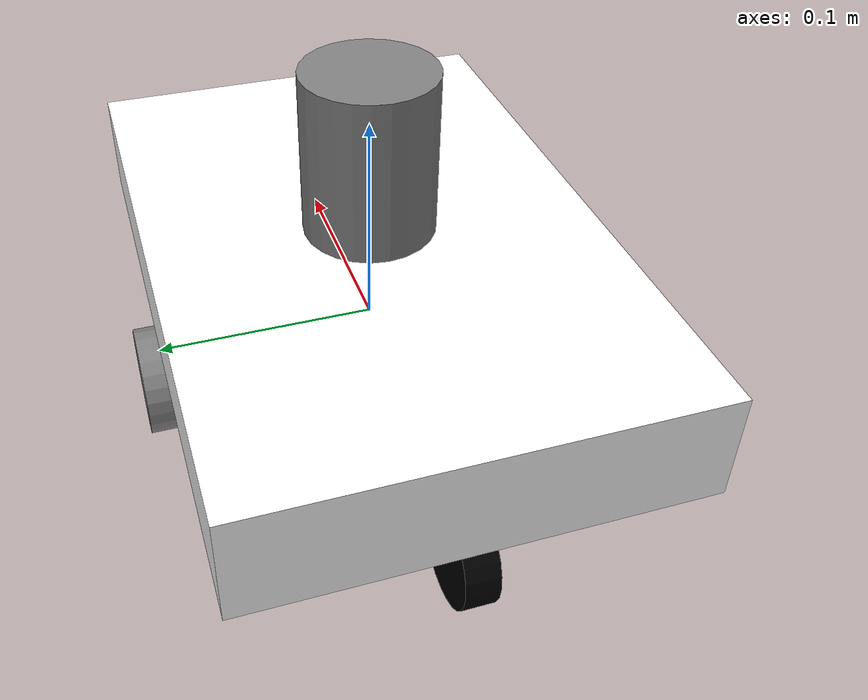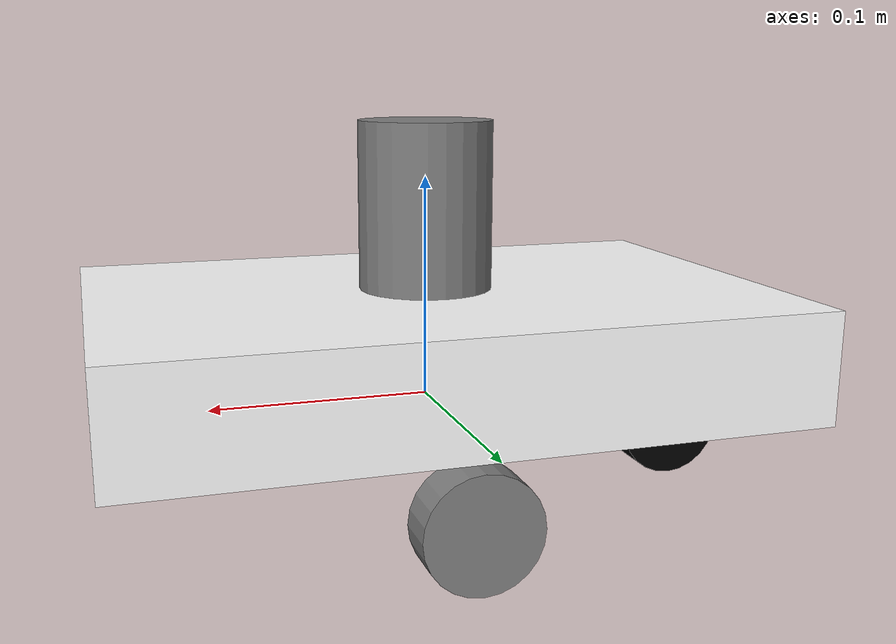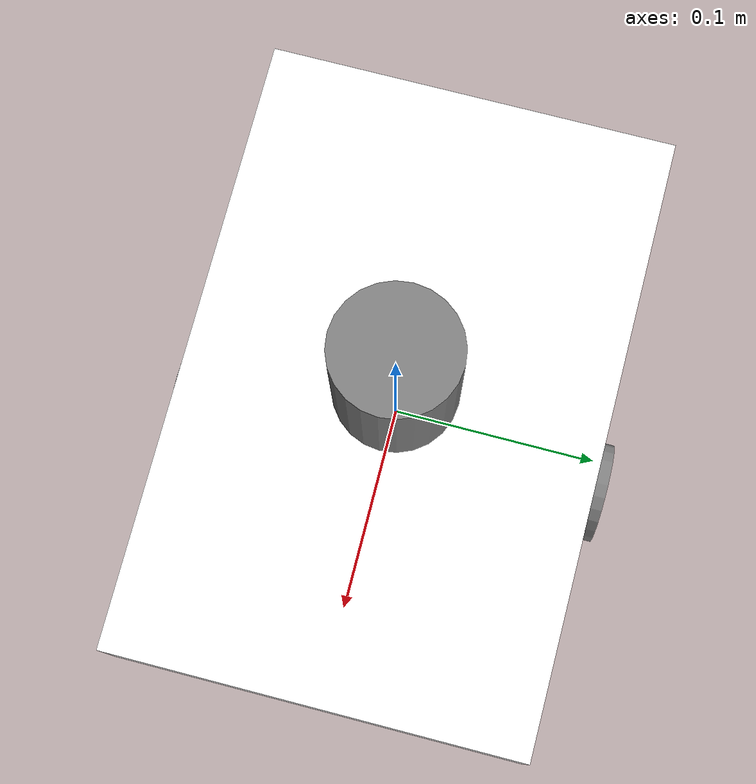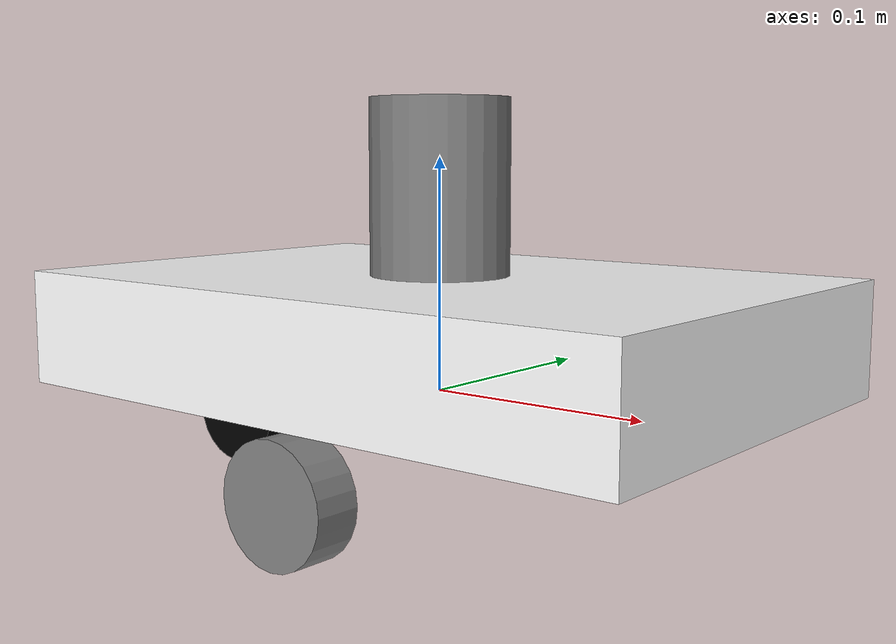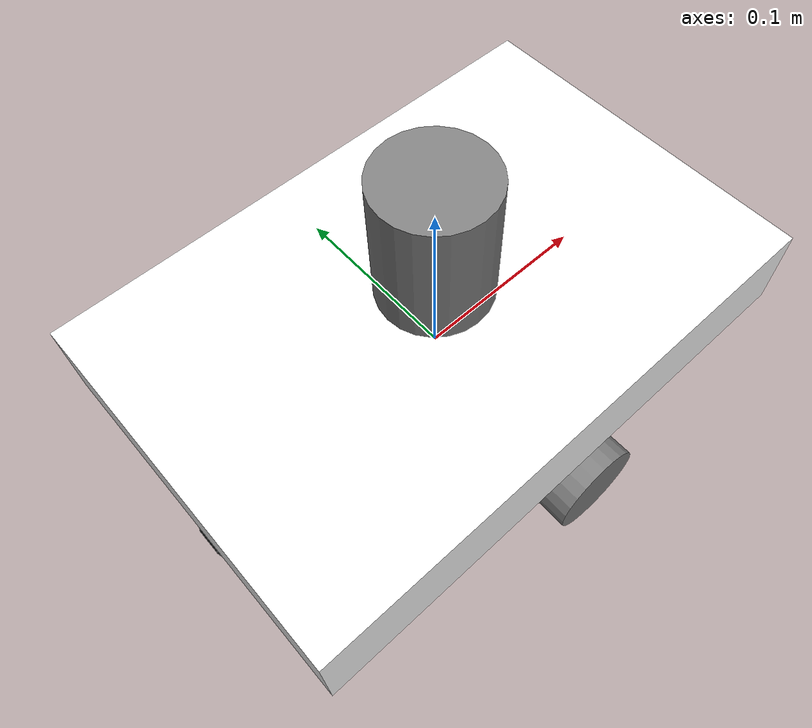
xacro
<?xml version="1.0"?>
<robot name="lib_robot" xmlns:xacro="http://ros.org/wiki/xacro">

  <xacro:include filename="$(find project_wooyangwoo)/urdf/wheel.urdf.xacro" />
  <xacro:include filename="$(find project_wooyangwoo)/urdf/caster_wheel.urdf.xacro" />

<!-- 색깔 정의 -->
  <material name="Black">
    <color rgba="0.0 0.0 0.0 1.0"/>
  </material>
  <material name="Red">
    <color rgba="0.8 0.0 0.0 1.0"/>
  </material>
  <material name="White">
    <color rgba="1.0 1.0 1.0 1.0"/>
  </material>
  <material name="Grey">
    <color rgba="0.5 0.5 0.5 1.0"/>
  </material>
  <material name="Blue">
    <color rgba="0.0 0.0 0.8 1.0"/>
  </material>

  <!-- PROPERTY LIST -->
  <!--기본 프로퍼티-->
  <xacro:property name="M_PI" value="3.1415926535897931" />
  <xacro:property name="M_PI_2" value="1.570796327" />
  <xacro:property name="DEG_TO_RAD" value="0.017453293" />

 <!-- 베이스링크 프로퍼티 -->
  <xacro:property name="base_length" value="0.30" />  <!-- 30cm -->
  <xacro:property name="base_width" value="0.20" />   <!-- 20cm -->
  <xacro:property name="base_height" value="0.05" />  <!-- 5cm -->
  <xacro:property name="base_mass" value="5.0" />     <!-- kg -->

  <!-- 바퀴 프로퍼티 -->
  <xacro:property name="wheel_mass" value="2.5" /> <!-- in kg-->
  <xacro:property name="base_x_origin_to_wheel_origin" value="0.25" />
  <xacro:property name="base_y_origin_to_wheel_origin" value="0.3" />
  <xacro:property name="base_z_origin_to_wheel_origin" value="0.0" />

  <!-- Hokuyo Laser scanner -->
  <xacro:property name="hokuyo_size" value="0.05" />

  <!-- Macro for calculating inertia of cylinder -->
  <xacro:macro name="cylinder_inertia" params="m r h">
    <inertia  ixx="${m*(3*r*r+h*h)/12}" ixy = "0" ixz = "0"
              iyy="${m*(3*r*r+h*h)/12}" iyz = "0"
              izz="${m*r*r/2}" />
  </xacro:macro>

  <!-- BASE-FOOTPRINT -->
  <link name="base_footprint">
    <inertial>
      <mass value="0.0001" />
      <origin xyz="0 0 0" />
      <inertia ixx="0.0001" ixy="0.0" ixz="0.0"
          iyy="0.0001" iyz="0.0"
          izz="0.0001" />
    </inertial>
    <visual>
        <origin xyz="0 0 0" rpy="0 0 0" />
        <geometry>
            <box size="0.001 0.001 0.001" />
        </geometry>
    </visual>
  </link>

  <gazebo reference="base_footprint">
    <turnGravityOff>false</turnGravityOff>
  </gazebo>

  <joint name="base_footprint_joint" type="fixed">
    <origin xyz="0 0 ${wheel_radius - base_z_origin_to_wheel_origin}" rpy="0 0 0" />
    <parent link="base_footprint"/>
    <child link="base_link" />
  </joint>

  <!--베이스 링크-->
  <link name="base_link">
    <inertial>
      <mass value="${base_mass}" />
      <origin xyz="0 0 0" />
      <inertia ixx="${base_mass*(base_width*base_width + base_height*base_height) / 12}"
              ixy="0.0"
              ixz="0.0"
              iyy="${base_mass*(base_length*base_length + base_height*base_height) / 12}"
              iyz="0.0"
              izz="${base_mass*(base_length*base_length + base_width*base_width) / 12}" />
    </inertial>
    <visual>
      <origin xyz="0 0 0" rpy="0 0 0" />
      <geometry>
        <box size="${base_length} ${base_width} ${base_height}" />
      </geometry>
      <material name="White" />
    </visual>
    <collision>
      <origin xyz="0 0 0" rpy="0 0 0" />
      <geometry>
        <box size="${base_length} ${base_width} ${base_height}" />
      </geometry>
    </collision>
  </link>

  <gazebo reference="base_link">
    <material>Gazebo/White</material>
    <turnGravityOff>false</turnGravityOff>
  </gazebo>

  <!-- Lidar 센서 링크 정의 -->
  <link name="lidar_link">
    <visual>
      <origin xyz="0 0 0" rpy="0 0 0"/>
      <geometry>
        <cylinder radius="0.03" length="0.1"/> <!-- 반지름 3cm, 높이 10cm -->
      </geometry>
      <material name="Grey"/>
    </visual>
    <collision>
      <origin xyz="0 0 0" rpy="0 0 0"/>
      <geometry>
        <cylinder radius="0.03" length="0.1"/> <!-- 반지름 3cm, 높이 10cm -->
      </geometry>
    </collision>
    <inertial>
      <mass value="0.5"/> <!-- 질량 설정 (kg) -->
      <origin xyz="0 0 0"/>
      <inertia ixx="0.0005" ixy="0" ixz="0"
               iyy="0.0005" iyz="0"
               izz="0.0005"/>
    </inertial>
  </link>

  <!-- Lidar 센서를 베이스링크 위에 부착하는 고정 조인트 -->
  <joint name="lidar_joint" type="fixed">
    <parent link="base_link"/> <!-- 베이스링크에 연결 -->
    <child link="lidar_link"/> <!-- lidar_link를 자식으로 -->
    <origin xyz="0 0 0.05" rpy="0 0 0"/> <!-- 베이스링크 위로 5cm 올려서 부착 -->
  </joint>

  <!-- 바퀴 (매크로 사용) -->
  <xacro:wheel fb="front" lr="right" parent="base_link" translateX="0.01" translateY="-0.1" flipY="1"/>
  <xacro:wheel fb="front" lr="left" parent="base_link" translateX="0.01" translateY="0.1" flipY="1"/>
  <xacro:caster_wheel parent="base_link" translateX="-0.125" translateY="0" flipY="1"/>

  <!-- 차동 드라이브 플러그인 -->
  <gazebo>
    <plugin name="lib_robot_controller" filename="libgazebo_ros_diff_drive.so">
      <commandTopic>cmd_vel</commandTopic>
      <odometryTopic>odom</odometryTopic>
      <odometryFrame>odom</odometryFrame>
      <odometrySource>world</odometrySource>
      <publishOdomTF>true</publishOdomTF>
      <robotBaseFrame>base_footprint</robotBaseFrame>
      <publishWheelTF>false</publishWheelTF>
      <publishTf>true</publishTf>
      <publishWheelJointState>true</publishWheelJointState>
      <leftJoint>front_left_wheel_joint</leftJoint>  <!-- 왼쪽 바퀴 조인트 -->
      <rightJoint>front_right_wheel_joint</rightJoint>  <!-- 오른쪽 바퀴 조인트 -->
      <wheelSeparation>0.30</wheelSeparation>
      <wheelDiameter>${2 * wheel_radius}</wheelDiameter>
      <wheelTorque>30</wheelTorque>
      <wheelAcceleration>1.8</wheelAcceleration>
    </plugin>
  </gazebo>

  <!-- IMU 플러그인 -->
  <gazebo>
    <plugin name="imu_plugin" filename="libgazebo_ros_imu.so">
      <alwaysOn>true</alwaysOn>
      <bodyName>base_link</bodyName>  <!-- IMU가 장착된 링크 이름 -->
      <frameName>imu_link</frameName> <!-- IMU의 프레임 이름 -->
      <topicName>imu</topicName>      <!-- 퍼블리시될 토픽 이름 -->
      <serviceName>imu_service</serviceName>
      <gaussianNoise>0.0</gaussianNoise>
    </plugin>
  </gazebo>

  <!-- Lidar 플러그인 -->
  <gazebo reference="lidar_link">
    <sensor type="ray" name="lds_lfcd_sensor">
      <pose>0 0 0 0 0 0</pose>
      <visualize>true</visualize>
      <update_rate>25</update_rate>
      <ray>
        <scan>
          <horizontal>
            <samples>720</samples>
            <resolution>1</resolution>
            <min_angle>0.0</min_angle>
            <max_angle>6.28319</max_angle>
          </horizontal>
        </scan>
        <range>
          <min>0.120</min>
          <max>3.5</max>
          <resolution>0.015</resolution>
        </range>
        <noise>
          <type>gaussian</type>
          <mean>0.0</mean>
          <stddev>0.004</stddev>
        </noise>
      </ray>
      <plugin name="gazebo_ros_lds_lfcd_controller" filename="libgazebo_ros_laser.so">
        <topicName>scan</topicName>
        <frameName>lidar_link</frameName>
      </plugin>
    </sensor>
  </gazebo>
</robot>

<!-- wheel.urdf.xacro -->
<robot name="wheel" xmlns:xacro="http://www.ros.org/wiki/xacro">

  <!-- 일반 바퀴 속성 정의 -->
  <xacro:property name="wheel_radius" value="0.025" />
  <xacro:property name="wheel_height" value="0.02" />
  <xacro:property name="wheel_mass" value="1.0" /> <!-- in kg-->

  <xacro:property name="base_x_origin_to_wheel_origin" value="0.25" />
  <xacro:property name="base_y_origin_to_wheel_origin" value="0.3" />
  <xacro:property name="base_z_origin_to_wheel_origin" value="0.0" />
  <xacro:property name="base_height" value="0.05" /> <!-- Base Link 두께 정의 -->

  <!-- 일반 바퀴 매크로 정의 -->
  <xacro:macro name="wheel" params="fb lr parent translateX translateY flipY">
    <link name="${fb}_${lr}_wheel">
      <visual>
        <origin xyz="0 0 0" rpy="${flipY*M_PI/2} 0 0" />
        <geometry>
          <cylinder length="${wheel_height}" radius="${wheel_radius}" />
        </geometry>
        <material name="Grey" />
      </visual>
      <collision>
        <origin xyz="0 0 0" rpy="${flipY*M_PI/2} 0 0" />
        <geometry>
          <cylinder length="${wheel_height}" radius="${wheel_radius}" />
        </geometry>
      </collision>
      <inertial>
        <mass value="${wheel_mass}" />
        <origin xyz="0 0 0" />
        <inertia ixx="0.001" ixy="0.0" ixz="0.0"
                 iyy="0.001" iyz="0.0"
                 izz="0.001" />
      </inertial>
    </link>

    <joint name="${fb}_${lr}_wheel_joint" type="continuous">
      <parent link="${parent}"/>
      <child link="${fb}_${lr}_wheel"/>
      <origin xyz="${translateX} ${translateY} ${-(base_height / 2 + wheel_radius)}" rpy="0 0 0" />
      <axis xyz="0 1 0" />
      <limit effort="100" velocity="100"/>
      <joint_properties damping="0.0" friction="0.0"/>
    </joint>

    <!-- Transmission 정의 -->
    <transmission name="${fb}_${lr}_wheel_joint_trans">
      <type>transmission_interface/SimpleTransmission</type>
      <joint name="${fb}_${lr}_wheel_joint" />
      <actuator name="${fb}_${lr}_wheel_joint_motor">
        <hardwareInterface>EffortJointInterface</hardwareInterface>
        <mechanicalReduction>1</mechanicalReduction>
      </actuator>
    </transmission>

    <!-- Gazebo 설정 -->
    <gazebo reference="${fb}_${lr}_wheel">
      <mu1 value="1.0"/>
      <mu2 value="1.0"/>
      <kp value="10000000.0" />
      <kd value="1.0" />
      <fdir1 value="1 0 0"/>
      <material>Gazebo/Grey</material>
      <turnGravityOff>false</turnGravityOff>
    </gazebo>

  </xacro:macro>

</robot>

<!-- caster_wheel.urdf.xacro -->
<robot name="caster_wheel" xmlns:xacro="http://www.ros.org/wiki/xacro">

  <!-- 보조 바퀴 속성 정의 -->
  <xacro:property name="caster_wheel_radius" value="0.025" />
  <xacro:property name="caster_wheel_height" value="0.015" />
  <xacro:property name="caster_wheel_mass" value="0.5" /> <!-- in kg-->

  <xacro:property name="base_x_origin_to_caster_wheel_origin" value="0.25" />
  <xacro:property name="base_y_origin_to_caster_wheel_origin" value="0.0" />
  <xacro:property name="base_z_origin_to_caster_wheel_origin" value="0.0" />

  <!-- 보조 바퀴 매크로 정의 -->
  <xacro:macro name="caster_wheel" params="parent translateX translateY flipY">
    <link name="caster_wheel">
      <visual>
        <origin xyz="0 0 0" rpy="${flipY*M_PI/2} 0 0" />
        <geometry>
          <cylinder length="${caster_wheel_height}" radius="${caster_wheel_radius}" />
        </geometry>
        <material name="Black" />
      </visual>
      <collision>
        <origin xyz="0 0 0" rpy="${flipY*M_PI/2} 0 0" />
        <geometry>
          <cylinder length="${caster_wheel_height}" radius="${caster_wheel_radius}" />
        </geometry>
      </collision>
      <inertial>
        <mass value="${caster_wheel_mass}" />
        <origin xyz="0 0 0" />
        <inertia ixx="0.001" ixy="0.0" ixz="0.0"
                 iyy="0.001" iyz="0.0"
                 izz="0.001" />
      </inertial>
    </link>

    <joint name="caster_wheel_joint" type="fixed">
      <parent link="${parent}"/>
      <child link="caster_wheel"/>
      <origin xyz="${translateX} ${translateY} ${-(0.05 / 2 + caster_wheel_radius)}" rpy="0 0 0" />
    </joint>

    <!-- Gazebo 설정 -->
    <gazebo reference="caster_wheel">
      <mu1 value="1.0"/>
      <mu2 value="1.0"/>
      <kp value="10000000.0" />
      <kd value="1.0" />
      <fdir1 value="1 0 0"/>
      <material>Gazebo/Black</material>
      <turnGravityOff>false</turnGravityOff>
    </gazebo>

  </xacro:macro>

</robot>
